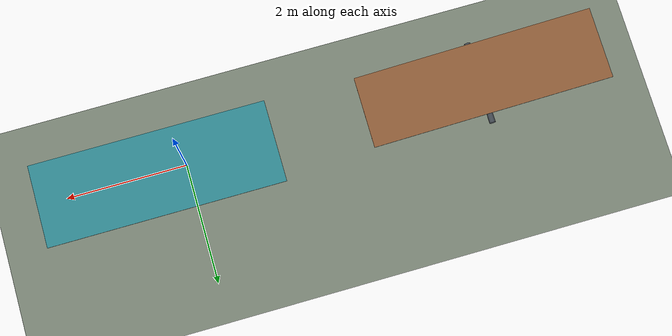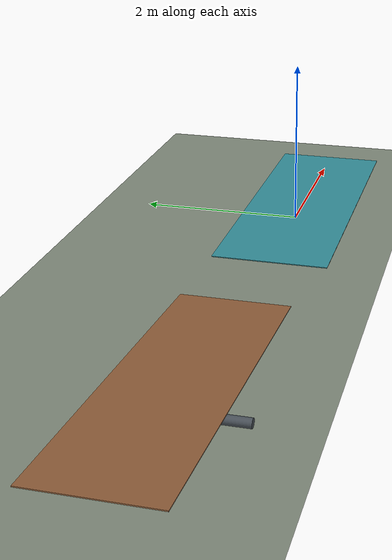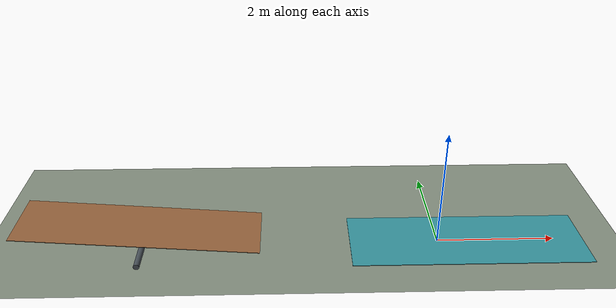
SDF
<?xml version="1.0" ?>
<sdf version="1.10">
  <world name="balance_challenge">
    <physics name="physics" type="ode">
      <max_step_size>0.004</max_step_size>
      <real_time_factor>1.0</real_time_factor>
    </physics>

    <plugin filename="gz-sim-physics-system" name="gz::sim::systems::Physics" />
    <plugin filename="gz-sim-user-commands-system" name="gz::sim::systems::UserCommands" />
    <plugin filename="gz-sim-scene-broadcaster-system" name="gz::sim::systems::SceneBroadcaster" />
    <plugin filename="gz-sim-sensors-system" name="gz::sim::systems::Sensors">
      <render_engine>ogre2</render_engine>
    </plugin>

    <gravity>0 0 -9.8</gravity>

    <light name="sun" type="directional">
      <cast_shadows>true</cast_shadows>
      <pose>0 0 10 0 0 0</pose>
      <diffuse>0.8 0.8 0.8 1</diffuse>
      <specular>0.2 0.2 0.2 1</specular>
      <attenuation>
        <range>1000</range>
        <constant>0.9</constant>
        <linear>0.01</linear>
        <quadratic>0.001</quadratic>
      </attenuation>
      <direction>-0.5 0.1 -0.9</direction>
    </light>

    <model name="ground_plane">
      <static>true</static>
      <link name="link">
        <collision name="collision">
          <geometry>
            <plane>
              <normal>0 0 1</normal>
              <size>100 100</size>
            </plane>
          </geometry>
        </collision>
        <visual name="visual">
          <geometry>
            <plane>
              <normal>0 0 1</normal>
              <size>100 100</size>
            </plane>
          </geometry>
          <material>
            <ambient>0.50 0.54 0.48 1</ambient>
            <diffuse>0.50 0.54 0.48 1</diffuse>
          </material>
        </visual>
      </link>
    </model>

    <model name="physics_seesaw">
      <static>false</static>
      <pose>-5 0 0 0 0 0</pose>

      <link name="fulcrum">
        <pose>0 0 0.05 1.5708 0 0</pose>
        <gravity>false</gravity>
        <inertial>
          <mass>200.0</mass>
          <inertia>
            <ixx>4.0</ixx>
            <iyy>4.0</iyy>
            <izz>4.0</izz>
            <ixy>0</ixy>
            <ixz>0</ixz>
            <iyz>0</iyz>
          </inertia>
        </inertial>
        <collision name="collision">
          <geometry>
            <cylinder>
              <radius>0.18</radius>
              <length>1.4</length>
            </cylinder>
          </geometry>
        </collision>
        <visual name="visual">
          <geometry>
            <cylinder>
              <radius>0.05</radius>
              <length>1.4</length>
            </cylinder>
          </geometry>
          <material>
            <ambient>0.28 0.31 0.34 1</ambient>
            <diffuse>0.28 0.31 0.34 1</diffuse>
          </material>
        </visual>
      </link>

      <link name="pivot">
        <pose>0 0 0.38 0 0 0</pose>
        <gravity>false</gravity>
        <inertial>
          <mass>200.0</mass>
          <inertia>
            <ixx>4.0</ixx>
            <iyy>4.0</iyy>
            <izz>4.0</izz>
            <ixy>0</ixy>
            <ixz>0</ixz>
            <iyz>0</iyz>
          </inertia>
        </inertial>
      </link>

      <link name="board">
        <pose>0 0 0.38 0 0.08 0</pose>
        <inertial>
          <pose>0.35 0 0 0 0 0</pose>
          <mass>18.0</mass>
          <inertia>
            <ixx>3.004</ixx>
            <iyy>24.019</iyy>
            <izz>27.000</izz>
            <ixy>0</ixy>
            <ixz>0</ixz>
            <iyz>0</iyz>
          </inertia>
        </inertial>
        <collision name="collision">
          <geometry>
            <box>
              <size>4.0 1.2 0.01</size>
            </box>
          </geometry>
          <surface>
            <friction>
              <ode>
                <mu>8.0</mu>
                <mu2>8.0</mu2>
              </ode>
            </friction>
          </surface>
        </collision>
        <visual name="visual">
          <geometry>
            <box>
              <size>4.0 1.2 0.01</size>
            </box>
          </geometry>
          <material>
            <ambient>0.48 0.31 0.18 1</ambient>
            <diffuse>0.58 0.38 0.23 1</diffuse>
          </material>
        </visual>
      </link>

      <joint name="fulcrum_fixed" type="fixed">
        <parent>world</parent>
        <child>fulcrum</child>
      </joint>
      <joint name="pivot_fixed" type="fixed">
        <parent>world</parent>
        <child>pivot</child>
      </joint>
      <joint name="board_pivot" type="revolute">
        <parent>pivot</parent>
        <child>board</child>
        <axis>
          <xyz>0 1 0</xyz>
          <limit>
            <lower>-0.45</lower>
            <upper>0.45</upper>
          </limit>
          <dynamics>
            <damping>0.25</damping>
            <friction>0.0</friction>
          </dynamics>
        </axis>
      </joint>
    </model>

    <model name="motor_tilt_platform">
      <static>false</static>
      <pose>-1.5 0 0 0 0 0</pose>

      <link name="base">
        <pose>0 0 0.011 0 0 0</pose>
        <inertial>
          <mass>150.0</mass>
          <inertia>
            <ixx>2.0</ixx>
            <iyy>2.0</iyy>
            <izz>2.0</izz>
            <ixy>0</ixy>
            <ixz>0</ixz>
            <iyz>0</iyz>
          </inertia>
        </inertial>
      </link>

      <link name="platform">
        <pose>0 0 0.011 0 0 0</pose>
        <inertial>
          <mass>35.0</mass>
          <inertia>
            <ixx>5.728</ixx>
            <iyy>186.685</iyy>
            <izz>192.383</izz>
            <ixy>0</ixy>
            <ixz>0</ixz>
            <iyz>0</iyz>
          </inertia>
        </inertial>
        <collision name="collision">
          <pose>2.0 0 0 0 0 0</pose>
          <geometry>
            <box>
              <size>4.0 1.4 0.01</size>
            </box>
          </geometry>
          <surface>
            <friction>
              <ode>
                <mu>8.0</mu>
                <mu2>8.0</mu2>
              </ode>
            </friction>
          </surface>
        </collision>
        <visual name="visual">
          <pose>2.0 0 0 0 0 0</pose>
          <geometry>
            <box>
              <size>4.0 1.4 0.01</size>
            </box>
          </geometry>
          <material>
            <ambient>0.20 0.46 0.50 1</ambient>
            <diffuse>0.20 0.56 0.60 1</diffuse>
          </material>
        </visual>
      </link>

      <joint name="base_fixed" type="fixed">
        <parent>world</parent>
        <child>base</child>
      </joint>
      <joint name="tilt_hinge" type="revolute">
        <parent>base</parent>
        <child>platform</child>
        <axis>
          <xyz>0 -1 0</xyz>
          <limit>
            <lower>0.0</lower>
            <upper>0.2</upper>
            <effort>2500.0</effort>
            <velocity>0.08</velocity>
          </limit>
          <dynamics>
            <damping>3.0</damping>
            <friction>0.2</friction>
          </dynamics>
        </axis>
      </joint>

      <plugin filename="gz-sim-joint-position-controller-system" name="gz::sim::systems::JointPositionController">
        <joint_name>tilt_hinge</joint_name>
        <topic>/balance_challenge/motor_tilt_platform/target_position</topic>
        <p_gain>5000.0</p_gain>
        <i_gain>0.0</i_gain>
        <d_gain>300.0</d_gain>
        <cmd_max>10000.0</cmd_max>
        <cmd_min>-10000.0</cmd_min>
      </plugin>
    </model>

  </world>
</sdf>
